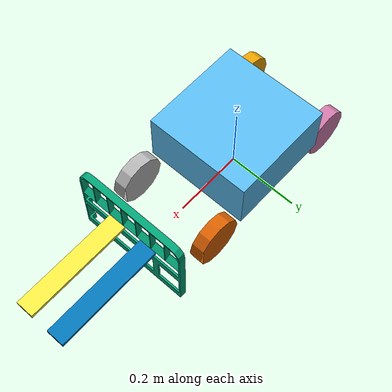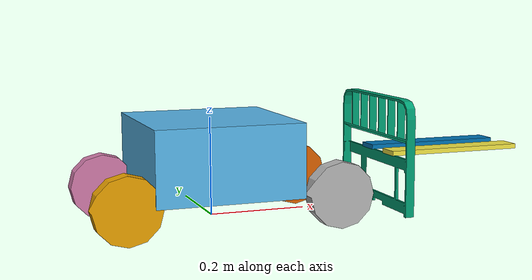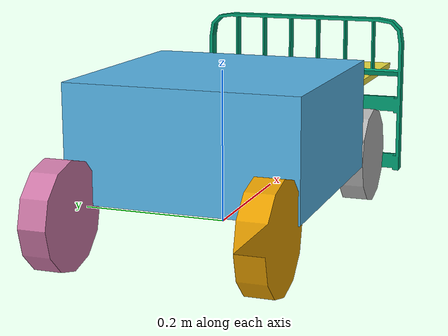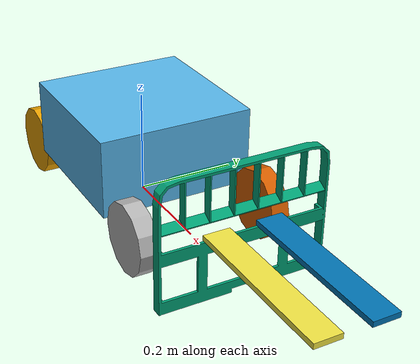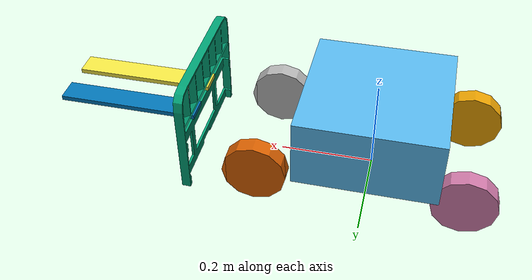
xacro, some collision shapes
<?xml version="1.0"?>
<robot xmlns:xacro="http://www.ros.org/wiki/xacro"  name="forklift">

    <xacro:include filename="robot_core.xacro" />

    <gazebo>

        <plugin
        filename="gz-sim-diff-drive-system"
        name="gz::sim::systems::DiffDrive">
            <left_joint>left_wheel_joint</left_joint>
            <left_joint>left_wheel_back_joint</left_joint>
            <right_joint>right_wheel_joint</right_joint>
            <right_joint>right_wheel_back_joint</right_joint>
            <wheel_separation>0.3</wheel_separation>
            <wheel_radius>0.07</wheel_radius>
            <odom_publish_frequency>1</odom_publish_frequency>
            <topic>cmd_vel</topic>
            <odom_topic>pos</odom_topic>
        </plugin>

        <plugin
        filename="gz-sim-odometry-publisher-system"
        name="gz::sim::systems::OdometryPublisher">
            <odom_frame>base_link</odom_frame>
        </plugin>

        <plugin
            filename="gz-sim-pose-publisher-system"
            name="gz::sim::systems::PosePublisher">
            <publish_link_pose>true</publish_link_pose>
            <publish_collision_pose>false</publish_collision_pose>
            <publish_visual_pose>false</publish_visual_pose>
            <publish_nested_model_pose>true</publish_nested_model_pose>
        </plugin>

      <plugin filename="gz-sim-joint-state-publisher-system" name="gz::sim::systems::JointStatePublisher">
          <topic>joint_states</topic>
      </plugin>

      <plugin filename="gz-sim-joint-position-controller-system" name="gz::sim::systems::JointPositionController">
        <joint_name>fork_plate_joint</joint_name>
        <topic>fork_control</topic>
        <initial_position>0.6</initial_position>
      </plugin>

    </gazebo>

</robot>

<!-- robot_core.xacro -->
<robot xmlns:xacro="http://www.ros.org/wiki/xacro" >

    <xacro:include filename="inertial_macros.xacro"/>

    <material name="white">
        <color rgba="1 1 1 1" />
    </material>

    <material name="orange">
        <color rgba="1 0.3 0.1 1"/>
    </material>

    <material name="blue">
        <color rgba="0.2 0.2 1 1"/>
    </material>

    <material name="black">
        <color rgba="0 0 0 1"/>
    </material>

    <!-- BASE LINK -->

    <xacro:property name="track_length" value="0.3"/>
    <xacro:property name="track_depth" value="0.02"/> <!--This is actually the depth of the track when in up position-->
    <xacro:property name="track_width" value="0.05"/> <!--This is actually the depth of the track when in up position-->
    <xacro:property name="base_height" value="0.15"/>
    <xacro:property name="base_width" value="0.3"/>

    <link name="base_footprint">

    </link>

    <!-- base_link LINK -->

    <joint name="base_link_joint" type="fixed">
        <parent link="base_footprint"/>
        <child link="base_link"/>
        <origin xyz="0 0 0.125"/>
    </joint>

    <link name="base_link">
        <visual>
            <origin xyz="0 0 0.05"/>
            <geometry>
                <mesh filename="$(find test_bot_controller)/meshes/body.dae" scale="0.0027 0.0027 0.0027"/>
            </geometry>
        </visual>
        <collision>
            <origin xyz="0 0 0"/>
            <geometry>
                <box size="0.3 ${base_width} ${base_height}"/>
            </geometry>
        </collision>
        <xacro:inertial_box mass="500" x="0.3" y="${base_width}" z="${base_height}">
            <origin xyz="0 0 0" rpy="0 0 0"/>
        </xacro:inertial_box>
    </link>

    <link name="fork_plate">
        <visual>
            <origin xyz="0 0 0" rpy="0 0 0"/>
            <geometry>
                <mesh filename="$(find test_bot_controller)/meshes/fork_plate.dae" scale="0.0027 0.0027 0.0027"/>
            </geometry>
        </visual>
        <collision>
            <origin xyz="0 0 0" rpy="0 0 0"/>
            <geometry>
                <box size="0.01 0.3 0.2"/>
            </geometry>
        </collision>
        <inertial>
            <mass value="75"/>
            <origin xyz="0.005 0.15 0.1" rpy="0 0 0"/>
            <inertia ixx="0.075" ixy="0" ixz="0" iyy="0.075" iyz="0" izz="0.0045"/>
        </inertial>
    </link>

    <joint name="fork_plate_joint" type="prismatic">
        <parent link="base_link"/>
        <child link="fork_plate"/>
        <!--Offset the joint position by the track depth amount-->
        <origin xyz="0.375 0 0" rpy="0 0 0"/>
        <axis xyz="0 0 1"/>
        <limit effort="110" lower="0" upper="0.6" velocity="0.5"/>
    </joint>

    <link name="fork_1">
        <visual>
            <origin xyz="0.15 0 0" rpy="0 0 0"/>
            <geometry>
                <box size="0.3 0.05 0.01"/>
            </geometry>
        </visual>
        <collision>
            <origin xyz="0.15 0 0" rpy="0 0 0"/>
            <geometry>
                <box size="0.3 0.05 0.01"/>
            </geometry>
        </collision>
        <inertial>
            <mass value="50"/>
            <origin xyz="0.15 0 0" rpy="0 0 0"/>
            <inertia ixx="0.00010417" ixy="0" ixz="0" iyy="0.06510417" iyz="0" izz="0.06510417"/>
        </inertial>
    </link>

    <joint name="fork_1_joint" type="fixed">
        <parent link="fork_plate"/>
        <child link="fork_1"/>
        <origin xyz="0 -0.05 -0.01" rpy="0 0 0"/>
    </joint>

    <link name="fork_2">
        <visual>
            <origin xyz="0.15 0 0" rpy="0 0 0"/>
            <geometry>
                <box size="0.3 0.05 0.01"/>
            </geometry>
        </visual>
        <collision>
            <origin xyz="0.15 0 0" rpy="0 0 0"/>
            <geometry>
                <box size="0.3 0.05 0.01"/>
            </geometry>
        </collision>
        <inertial>
            <mass value="50"/>
            <origin xyz="0.15 0 0" rpy="0 0 0"/>
            <inertia ixx="0.00010417" ixy="0" ixz="0" iyy="0.06510417" iyz="0" izz="0.06510417"/>
        </inertial>
    </link>

    <joint name="fork_2_joint" type="fixed">
        <parent link="fork_plate"/>
        <child link="fork_2"/>
        <!--Offset the joint position by the track depth amount-->
        <origin xyz="0 0.05 -0.01" rpy="0 0 0"/>
    </joint>

    <!-- LEFT WHEEL LINK -->

    <joint name="left_wheel_joint" type="continuous">
        <parent link="base_link"/>
        <child link="left_wheel"/>
        <origin xyz="0.23 0.13 -0.075" rpy="0 0 0" />
        <axis xyz="0 1 0"/>
    </joint>

    <link name="left_wheel">
        <visual>
            <origin xyz="0 0 0" rpy="0 0 0"/>
            <geometry>
                <mesh filename="$(find test_bot_controller)/meshes/front_wheel_right.dae" scale="0.002 0.002 0.002"/>
            </geometry>
        </visual>
        <collision>
            <origin xyz="0 0 0" rpy="-${pi/2} 0 0"/>
            <geometry>
                <cylinder radius="0.07" length="0.02"/>
            </geometry>
        </collision>
        <xacro:inertial_cylinder mass="0.1" length="0.02" radius="0.05">
            <origin xyz="0 0 0" rpy="0 0 0"/>
        </xacro:inertial_cylinder>
    </link>

    <joint name="left_wheel_back_joint" type="continuous">
        <parent link="base_link"/>
        <child link="left_wheel_back"/>
        <origin xyz="-0.2 0.13 -0.075" rpy="0 0 0" />
        <axis xyz="0 1 0"/>
    </joint>

    <link name="left_wheel_back">
        <visual>
            <origin xyz="0 0 0" rpy="0 0 ${pi}"/>
            <geometry>
                <mesh filename="$(find test_bot_controller)/meshes/front_wheel_right.dae" scale="0.002 0.002 0.002"/>
            </geometry>
        </visual>
        <collision>
            <origin xyz="0 0 0" rpy="-${pi/2} 0 0"/>
            <geometry>
                <cylinder radius="0.07" length="0.02"/>
            </geometry>
        </collision>
        <xacro:inertial_cylinder mass="0.1" length="0.02" radius="0.05">
            <origin xyz="0 0 0" rpy="-${pi/2} 0 0"/>
        </xacro:inertial_cylinder>
    </link>

    <!-- RIGHT WHEEL LINK -->

    <joint name="right_wheel_joint" type="continuous">
        <parent link="base_link"/>
        <child link="right_wheel"/>
        <origin xyz="0.23 -0.13 -0.075" rpy="0 0 0" />
        <axis xyz="0 1 0"/>
    </joint>

    <link name="right_wheel">
        <visual>
            <origin xyz="0 0 0" rpy="0 0 0"/>
            <geometry>
                <mesh filename="$(find test_bot_controller)/meshes/front_wheel_right.dae" scale="0.002 0.002 0.002"/>
            </geometry>
        </visual>
        <collision>
            <origin xyz="0 0 0" rpy="-${pi/2} 0 0"/>
            <geometry>
                <cylinder radius="0.07" length="0.02"/>
            </geometry>
        </collision>
        <xacro:inertial_cylinder mass="0.1" length="0.02" radius="0.05">
            <origin xyz="0 0 0" rpy="-${pi/2} 0 0"/>
        </xacro:inertial_cylinder>
    </link>

    <joint name="right_wheel_back_joint" type="continuous">
        <parent link="base_link"/>
        <child link="right_wheel_back"/>
        <origin xyz="-0.2 -0.13 -0.075" rpy="0 0 0" />
        <axis xyz="0 1 0"/>
    </joint>

    <link name="right_wheel_back">
        <visual>
            <geometry>
                <mesh filename="$(find test_bot_controller)/meshes/front_wheel_right.dae" scale="0.002 0.002 0.002"/>
            </geometry>
        </visual>
        <collision>
            <origin xyz="0 0 0" rpy="-${pi/2} 0 0"/>
            <geometry>
                <cylinder radius="0.07" length="0.02"/>
            </geometry>
        </collision>
        <xacro:inertial_cylinder mass="0.1" length="0.02" radius="0.05">
            <origin xyz="0 0 0" rpy="-${pi/2} 0 0"/>
        </xacro:inertial_cylinder>
    </link>

</robot>
